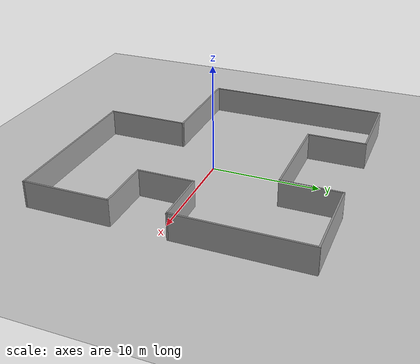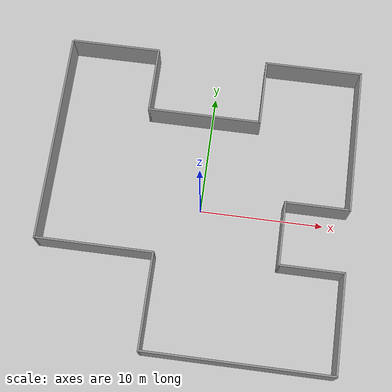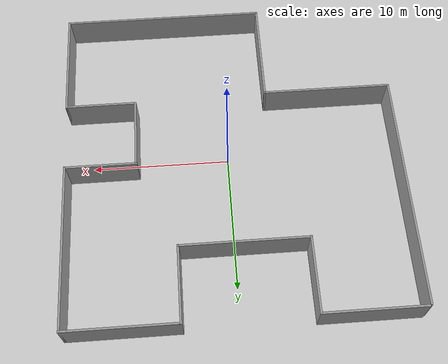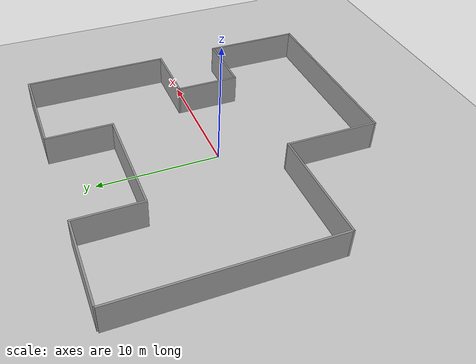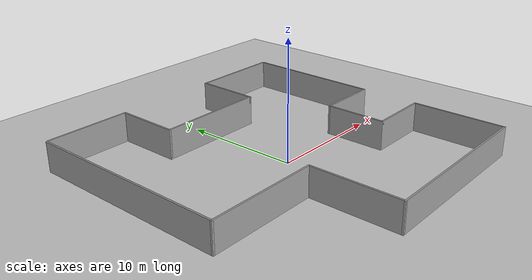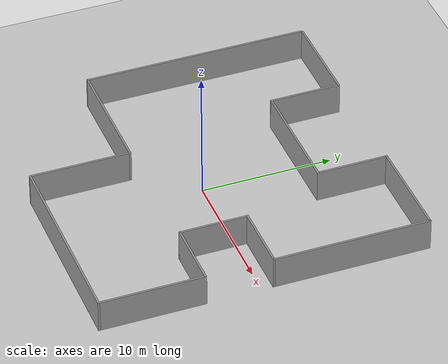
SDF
<?xml version="1.0" ?>
<sdf version='1.7'>
  <world name='default'>

    <include>
      <uri>model://ground_plane</uri>
    </include>
    <include>
      <uri>model://sun</uri>
    </include>

    <plugin name="ros_interface_plugin" filename="librotors_gazebo_ros_interface_plugin.so"/>

    <gravity>0 0 -9.8</gravity>
    <magnetic_field>6e-06 2.3e-05 -4.2e-05</magnetic_field>
    <atmosphere type='adiabatic'/>
    <physics type='ode'>
      <max_step_size>0.001</max_step_size>
      <real_time_factor>1.0</real_time_factor>
      <real_time_update_rate>1000</real_time_update_rate>
    </physics>
    <scene>
      <ambient>0.4 0.4 0.4 1</ambient>
      <background>0.7 0.7 0.7 1</background>
      <shadows>1</shadows>
    </scene>
    <wind/>
    <spherical_coordinates>
      <surface_model>EARTH_WGS84</surface_model>
      <latitude_deg>0</latitude_deg>
      <longitude_deg>0</longitude_deg>
      <elevation>0</elevation>
      <heading_deg>0</heading_deg>
    </spherical_coordinates>

    <model name='no_walls_simple'>
        <pose>-0.356749 0.392386 0 0 -0 0</pose>

        <link name='Wall_10'>
        <collision name='Wall_10_Collision'>
            <geometry>
            <box>
                <size>8 0.15 2.5</size>
            </box>
            </geometry>
            <pose>0 0 1.25 0 -0 0</pose>
            <max_contacts>10</max_contacts>
            <surface>
                <contact>
                <ode/>
                </contact>
                <bounce/>
                <friction>
                <torsional>
                    <ode/>
                </torsional>
                <ode/>
                </friction>
            </surface>
        </collision>
        <visual name='Wall_10_Visual'>
            <pose>0 0 1.25 0 -0 0</pose>
            <geometry>
            <box>
                <size>8 0.15 2.5</size>
            </box>
            </geometry>
            <material>
            <script>
                <uri>file://media/materials/scripts/gazebo.material</uri>
                <name>Gazebo/Grey</name>
            </script>
            <ambient>1 1 1 1</ambient>
            </material>
            <meta>
            <layer>0</layer>
            </meta>
        </visual>
        <pose>8.175 12.4 0 0 -0 0</pose>
        <self_collide>0</self_collide>
        <enable_wind>0</enable_wind>
        <kinematic>0</kinematic>
        </link>

        <link name='Wall_11'>
        <collision name='Wall_11_Collision'>
            <geometry>
            <box>
                <size>12 0.15 2.5</size>
            </box>
            </geometry>
            <pose>0 0 1.25 0 -0 0</pose>
            <max_contacts>10</max_contacts>
            <surface>
                <contact>
                <ode/>
                </contact>
                <bounce/>
                <friction>
                <torsional>
                    <ode/>
                </torsional>
                <ode/>
                </friction>
            </surface>
        </collision>
        <visual name='Wall_11_Visual'>
            <pose>0 0 1.25 0 -0 0</pose>
            <geometry>
            <box>
                <size>12 0.15 2.5</size>
            </box>
            </geometry>
            <material>
            <script>
                <uri>file://media/materials/scripts/gazebo.material</uri>
                <name>Gazebo/Grey</name>
            </script>
            <ambient>1 1 1 1</ambient>
            </material>
            <meta>
            <layer>0</layer>
            </meta>
        </visual>
        <pose>12.1 6.475 0 0 -0 -1.5708</pose>
        <self_collide>0</self_collide>
        <enable_wind>0</enable_wind>
        <kinematic>0</kinematic>
        </link>

        <link name='Wall_12'>
        <collision name='Wall_12_Collision'>
            <geometry>
            <box>
                <size>5.25 0.15 2.5</size>
            </box>
            </geometry>
            <pose>0 0 1.25 0 -0 0</pose>
            <max_contacts>10</max_contacts>
            <surface>
                <contact>
                <ode/>
                </contact>
                <bounce/>
                <friction>
                <torsional>
                    <ode/>
                </torsional>
                <ode/>
                </friction>
            </surface>
        </collision>
        <visual name='Wall_12_Visual'>
            <pose>0 0 1.25 0 -0 0</pose>
            <geometry>
            <box>
                <size>5.25 0.15 2.5</size>
            </box>
            </geometry>
            <material>
            <script>
                <uri>file://media/materials/scripts/gazebo.material</uri>
                <name>Gazebo/Grey</name>
            </script>
            <ambient>1 1 1 1</ambient>
            </material>
            <meta>
            <layer>0</layer>
            </meta>
        </visual>
        <pose>9.55 0.55 0 0 -0 3.14159</pose>
        <self_collide>0</self_collide>
        <enable_wind>0</enable_wind>
        <kinematic>0</kinematic>
        </link>

        <link name='Wall_13'>
        <collision name='Wall_13_Collision'>
            <geometry>
            <box>
                <size>5.25 0.15 2.5</size>
            </box>
            </geometry>
            <pose>0 0 1.25 0 -0 0</pose>
            <max_contacts>10</max_contacts>
            <surface>
                <contact>
                <ode/>
                </contact>
                <bounce/>
                <friction>
                <torsional>
                    <ode/>
                </torsional>
                <ode/>
                </friction>
            </surface>
        </collision>
        <visual name='Wall_13_Visual'>
            <pose>0 0 1.25 0 -0 0</pose>
            <geometry>
            <box>
                <size>5.25 0.15 2.5</size>
            </box>
            </geometry>
            <material>
            <script>
                <uri>file://media/materials/scripts/gazebo.material</uri>
                <name>Gazebo/Grey</name>
            </script>
            <ambient>1 1 1 1</ambient>
            </material>
            <meta>
            <layer>0</layer>
            </meta>
        </visual>
        <pose>7 -2 0 0 -0 -1.5708</pose>
        <self_collide>0</self_collide>
        <enable_wind>0</enable_wind>
        <kinematic>0</kinematic>
        </link>

        <link name='Wall_14'>
        <collision name='Wall_14_Collision'>
            <geometry>
            <box>
                <size>5.25 0.15 2.5</size>
            </box>
            </geometry>
            <pose>0 0 1.25 0 -0 0</pose>
            <max_contacts>10</max_contacts>
            <surface>
                <contact>
                <ode/>
                </contact>
                <bounce/>
                <friction>
                <torsional>
                    <ode/>
                </torsional>
                <ode/>
                </friction>
            </surface>
        </collision>
        <visual name='Wall_14_Visual'>
            <pose>0 0 1.25 0 -0 0</pose>
            <geometry>
            <box>
                <size>5.25 0.15 2.5</size>
            </box>
            </geometry>
            <material>
            <script>
                <uri>file://media/materials/scripts/gazebo.material</uri>
                <name>Gazebo/Grey</name>
            </script>
            <ambient>1 1 1 1</ambient>
            </material>
            <meta>
            <layer>0</layer>
            </meta>
        </visual>
        <pose>9.55 -4.55 0 0 -0 0</pose>
        <self_collide>0</self_collide>
        <enable_wind>0</enable_wind>
        <kinematic>0</kinematic>
        </link>

        <link name='Wall_15'>
        <collision name='Wall_15_Collision'>
            <geometry>
            <box>
                <size>8 0.15 2.5</size>
            </box>
            </geometry>
            <pose>0 0 1.25 0 -0 0</pose>
            <max_contacts>10</max_contacts>
            <surface>
                <contact>
                <ode/>
                </contact>
                <bounce/>
                <friction>
                <torsional>
                    <ode/>
                </torsional>
                <ode/>
                </friction>
            </surface>
        </collision>
        <visual name='Wall_15_Visual'>
            <pose>0 0 1.25 0 -0 0</pose>
            <geometry>
            <box>
                <size>8 0.15 2.5</size>
            </box>
            </geometry>
            <material>
            <script>
                <uri>file://media/materials/scripts/gazebo.material</uri>
                <name>Gazebo/Grey</name>
            </script>
            <ambient>1 1 1 1</ambient>
            </material>
            <meta>
            <layer>0</layer>
            </meta>
        </visual>
        <pose>12.1 -8.475 0 0 -0 -1.5708</pose>
        <self_collide>0</self_collide>
        <enable_wind>0</enable_wind>
        <kinematic>0</kinematic>
        </link>

        <link name='Wall_16'>
        <collision name='Wall_16_Collision'>
            <geometry>
            <box>
                <size>15 0.15 2.5</size>
            </box>
            </geometry>
            <pose>0 0 1.25 0 -0 0</pose>
            <max_contacts>10</max_contacts>
            <surface>
                <contact>
                <ode/>
                </contact>
                <bounce/>
                <friction>
                <torsional>
                    <ode/>
                </torsional>
                <ode/>
                </friction>
            </surface>
        </collision>
        <visual name='Wall_16_Visual'>
            <pose>0 0 1.25 0 -0 0</pose>
            <geometry>
            <box>
                <size>15 0.15 2.5</size>
            </box>
            </geometry>
            <material>
            <script>
                <uri>file://media/materials/scripts/gazebo.material</uri>
                <name>Gazebo/Grey</name>
            </script>
            <ambient>1 1 1 1</ambient>
            </material>
            <meta>
            <layer>0</layer>
            </meta>
        </visual>
        <pose>4.675 -12.4 0 0 -0 3.14159</pose>
        <self_collide>0</self_collide>
        <enable_wind>0</enable_wind>
        <kinematic>0</kinematic>
        </link>

        <link name='Wall_17'>
        <collision name='Wall_17_Collision'>
            <geometry>
            <box>
                <size>7.75 0.15 2.5</size>
            </box>
            </geometry>
            <pose>0 0 1.25 0 -0 0</pose>
            <max_contacts>10</max_contacts>
            <surface>
                <contact>
                <ode/>
                </contact>
                <bounce/>
                <friction>
                <torsional>
                    <ode/>
                </torsional>
                <ode/>
                </friction>
            </surface>
        </collision>
        <visual name='Wall_17_Visual'>
            <pose>0 0 1.25 0 -0 0</pose>
            <geometry>
            <box>
                <size>7.75 0.15 2.5</size>
            </box>
            </geometry>
            <material>
            <script>
                <uri>file://media/materials/scripts/gazebo.material</uri>
                <name>Gazebo/Grey</name>
            </script>
            <ambient>1 1 1 1</ambient>
            </material>
            <meta>
            <layer>0</layer>
            </meta>
        </visual>
        <pose>-2.75 -8.6 0 0 -0 1.5708</pose>
        <self_collide>0</self_collide>
        <enable_wind>0</enable_wind>
        <kinematic>0</kinematic>
        </link>

        <link name='Wall_18'>
        <collision name='Wall_18_Collision'>
            <geometry>
            <box>
                <size>9.5 0.15 2.5</size>
            </box>
            </geometry>
            <pose>0 0 1.25 0 -0 0</pose>
            <max_contacts>10</max_contacts>
            <surface>
                <contact>
                <ode/>
                </contact>
                <bounce/>
                <friction>
                <torsional>
                    <ode/>
                </torsional>
                <ode/>
                </friction>
            </surface>
        </collision>
        <visual name='Wall_18_Visual'>
            <pose>0 0 1.25 0 -0 0</pose>
            <geometry>
            <box>
                <size>9.5 0.15 2.5</size>
            </box>
            </geometry>
            <material>
            <script>
                <uri>file://media/materials/scripts/gazebo.material</uri>
                <name>Gazebo/Grey</name>
            </script>
            <ambient>1 1 1 1</ambient>
            </material>
            <meta>
            <layer>0</layer>
            </meta>
        </visual>
        <pose>-7.425 -4.8 0 0 -0 3.14159</pose>
        <self_collide>0</self_collide>
        <enable_wind>0</enable_wind>
        <kinematic>0</kinematic>
        </link>

        <link name='Wall_19'>
        <collision name='Wall_19_Collision'>
            <geometry>
            <box>
                <size>17.25 0.15 2.5</size>
            </box>
            </geometry>
            <pose>0 0 1.25 0 -0 0</pose>
            <max_contacts>10</max_contacts>
            <surface>
                <contact>
                <ode/>
                </contact>
                <bounce/>
                <friction>
                <torsional>
                    <ode/>
                </torsional>
                <ode/>
                </friction>
            </surface>
        </collision>
        <visual name='Wall_19_Visual'>
            <pose>0 0 1.25 0 -0 0</pose>
            <geometry>
            <box>
                <size>17.25 0.15 2.5</size>
            </box>
            </geometry>
            <material>
            <script>
                <uri>file://media/materials/scripts/gazebo.material</uri>
                <name>Gazebo/Grey</name>
            </script>
            <ambient>1 1 1 1</ambient>
            </material>
            <meta>
            <layer>0</layer>
            </meta>
        </visual>
        <pose>-12.1 3.75 0 0 -0 1.5708</pose>
        <self_collide>0</self_collide>
        <enable_wind>0</enable_wind>
        <kinematic>0</kinematic>
        </link>

        <link name='Wall_6'>
        <collision name='Wall_6_Collision'>
            <geometry>
            <box>
                <size>7.25 0.15 2.5</size>
            </box>
            </geometry>
            <pose>0 0 1.25 0 -0 0</pose>
            <max_contacts>10</max_contacts>
            <surface>
                <contact>
                <ode/>
                </contact>
                <bounce/>
                <friction>
                <torsional>
                    <ode/>
                </torsional>
                <ode/>
                </friction>
            </surface>
        </collision>
        <visual name='Wall_6_Visual'>
            <pose>0 0 1.25 0 -0 0</pose>
            <geometry>
            <box>
                <size>7.25 0.15 2.5</size>
            </box>
            </geometry>
            <material>
            <script>
                <uri>file://media/materials/scripts/gazebo.material</uri>
                <name>Gazebo/Grey</name>
            </script>
            <ambient>1 1 1 1</ambient>
            </material>
            <meta>
            <layer>0</layer>
            </meta>
        </visual>
        <pose>-8.4 12.4 0 0 -0 0</pose>
        <self_collide>0</self_collide>
        <enable_wind>0</enable_wind>
        <kinematic>0</kinematic>
        </link>

        <link name='Wall_7'>
        <collision name='Wall_7_Collision'>
            <geometry>
            <box>
                <size>5.5 0.15 2.5</size>
            </box>
            </geometry>
            <pose>0 0 1.25 0 -0 0</pose>
            <max_contacts>10</max_contacts>
            <surface>
                <contact>
                <ode/>
                </contact>
                <bounce/>
                <friction>
                <torsional>
                    <ode/>
                </torsional>
                <ode/>
                </friction>
            </surface>
        </collision>
        <visual name='Wall_7_Visual'>
            <pose>0 0 1.25 0 -0 0</pose>
            <geometry>
            <box>
                <size>5.5 0.15 2.5</size>
            </box>
            </geometry>
            <material>
            <script>
                <uri>file://media/materials/scripts/gazebo.material</uri>
                <name>Gazebo/Grey</name>
            </script>
            <ambient>1 1 1 1</ambient>
            </material>
            <meta>
            <layer>0</layer>
            </meta>
        </visual>
        <pose>-4.85 9.725 0 0 -0 -1.5708</pose>
        <self_collide>0</self_collide>
        <enable_wind>0</enable_wind>
        <kinematic>0</kinematic>
        </link>

        <link name='Wall_8'>
        <collision name='Wall_8_Collision'>
            <geometry>
            <box>
                <size>9.25 0.15 2.5</size>
            </box>
            </geometry>
            <pose>0 0 1.25 0 -0 0</pose>
            <max_contacts>10</max_contacts>
            <surface>
                <contact>
                <ode/>
                </contact>
                <bounce/>
                <friction>
                <torsional>
                    <ode/>
                </torsional>
                <ode/>
                </friction>
            </surface>
        </collision>
        <visual name='Wall_8_Visual'>
            <pose>0 0 1.25 0 -0 0</pose>
            <geometry>
            <box>
                <size>9.25 0.15 2.5</size>
            </box>
            </geometry>
            <material>
            <script>
                <uri>file://media/materials/scripts/gazebo.material</uri>
                <name>Gazebo/Grey</name>
            </script>
            <ambient>1 1 1 1</ambient>
            </material>
            <meta>
            <layer>0</layer>
            </meta>
        </visual>
        <pose>-0.3 7.05 0 0 -0 0</pose>
        <self_collide>0</self_collide>
        <enable_wind>0</enable_wind>
        <kinematic>0</kinematic>
        </link>

        <link name='Wall_9'>
        <collision name='Wall_9_Collision'>
            <geometry>
            <box>
                <size>5.5 0.15 2.5</size>
            </box>
            </geometry>
            <pose>0 0 1.25 0 -0 0</pose>
            <max_contacts>10</max_contacts>
            <surface>
                <contact>
                <ode/>
                </contact>
                <bounce/>
                <friction>
                <torsional>
                    <ode/>
                </torsional>
                <ode/>
                </friction>
            </surface>
        </collision>
        <visual name='Wall_9_Visual'>
            <pose>0 0 1.25 0 -0 0</pose>
            <geometry>
            <box>
                <size>5.5 0.15 2.5</size>
            </box>
            </geometry>
            <material>
            <script>
                <uri>file://media/materials/scripts/gazebo.material</uri>
                <name>Gazebo/Grey</name>
            </script>
            <ambient>1 1 1 1</ambient>
            </material>
            <meta>
            <layer>0</layer>
            </meta>
        </visual>
        <pose>4.25 9.725 0 0 -0 1.5708</pose>
        <self_collide>0</self_collide>
        <enable_wind>0</enable_wind>
        <kinematic>0</kinematic>
        </link>
        <static>1</static>
    </model>

  </world>
</sdf>
